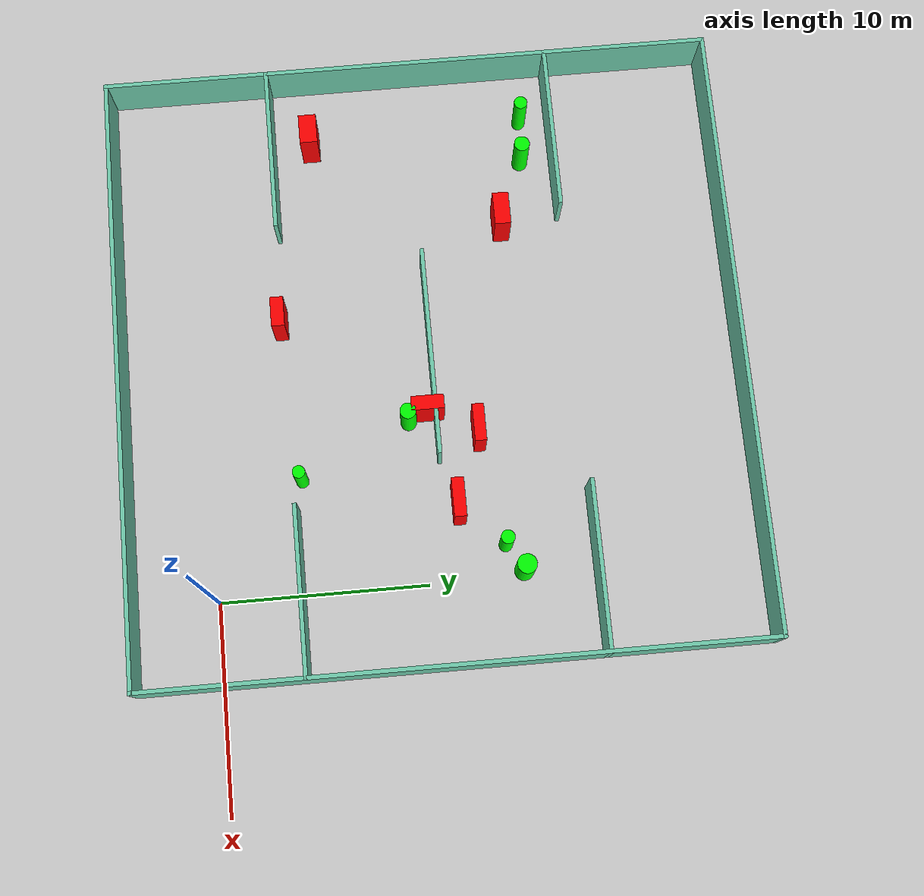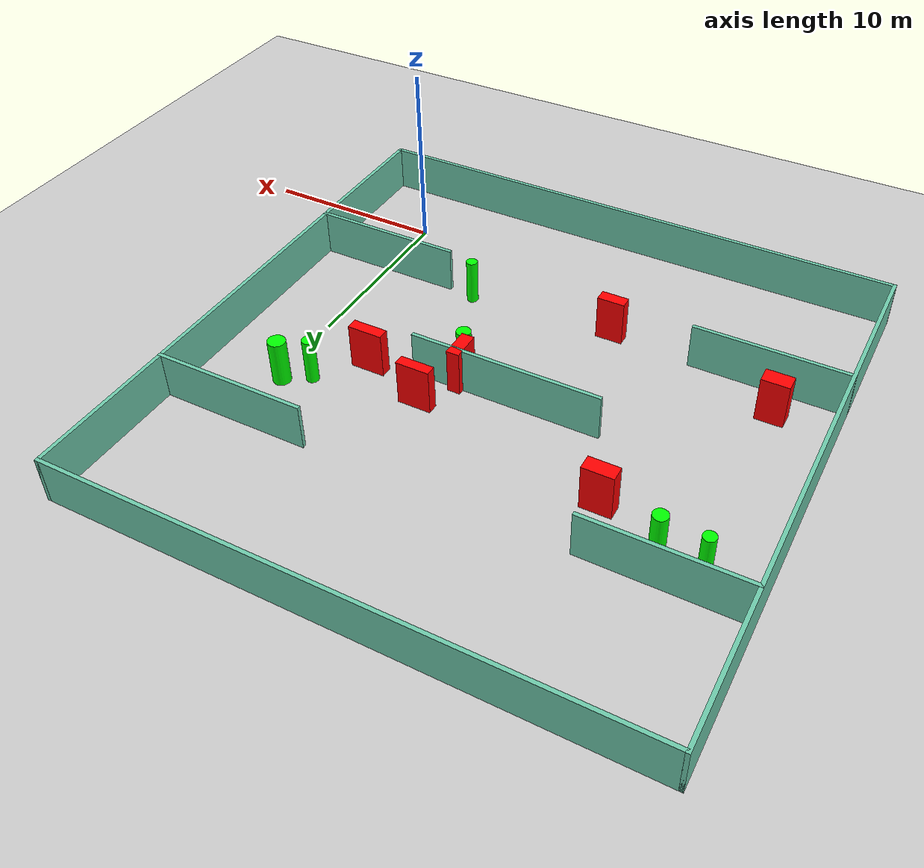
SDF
<sdf version="1.7">
 <world name="default">
  <light name="sun" type="directional">
   <pose>0 0 10 0 -0 0</pose>
   <diffuse>0.8 0.8 0.8 1</diffuse>
   <specular>0.2 0.2 0.2 1</specular>
   <attenuation>
    <range>1000</range>
    <constant>0.9</constant>
    <linear>0.01</linear>
    <quadratic>0.001</quadratic>
   </attenuation>
   <direction>-0.5 0.1 -0.9</direction>
   <spot><inner_angle>0</inner_angle><outer_angle>0</outer_angle><falloff>0</falloff></spot>
  </light>
  <model name="ground_plane">
   <static>1</static>
   <link name="link">
    <collision name="collision">
     <geometry><plane><normal>0 0 1</normal><size>100 100</size></plane></geometry>
     <surface>
      <contact><collide_bitmask>65535</collide_bitmask></contact>
      <friction><ode><mu>100</mu><mu2>50</mu2></ode></friction>
     </surface>
    </collision>
    <visual name="visual">
     <cast_shadows>0</cast_shadows>
     <geometry><plane><normal>0 0 1</normal><size>100 100</size></plane></geometry>
     <material>
      <script><uri>file://media/materials/scripts/gazebo.material</uri><name>Gazebo/Grey</name></script>
     </material>
    </visual>
   </link>
  </model>
  <gravity>0 0 -9.8</gravity>
  <magnetic_field>6e-06 2.3e-05 -4.2e-05</magnetic_field>
  <atmosphere type="adiabatic"/>
  <physics type="ode">
   <max_step_size>0.001</max_step_size>
   <real_time_factor>1</real_time_factor>
   <real_time_update_rate>1000</real_time_update_rate>
  </physics>
  <scene><ambient>0.4 0.4 0.4 1</ambient><background>0.7 0.7 0.7 1</background><shadows>1</shadows></scene>
  <spherical_coordinates>
   <surface_model>EARTH_WGS84</surface_model>
   <latitude_deg>0</latitude_deg>
   <longitude_deg>0</longitude_deg>
   <elevation>0</elevation>
   <heading_deg>0</heading_deg>
  </spherical_coordinates>
  <model name="my_base_walls">
   <link name="Wall_10">
    <collision name="Wall_10_Collision">
     <geometry><box><size>8.2 0.2 2.5</size></box></geometry>
     <pose>0 0 1.25 0 -0 0</pose>
    </collision>
    <visual name="Wall_10_Visual">
     <pose>0 0 1.25 0 -0 0</pose>
     <geometry><box><size>8.2 0.2 2.5</size></box></geometry>
     <material>
      <script><uri>file://media/materials/scripts/gazebo.material</uri><name>Gazebo/Grey</name></script>
      <ambient>0.435294 0.796078 0.67451 1</ambient>
     </material>
     <meta><layer>0</layer></meta>
    </visual>
    <pose>-11 -7 0 0 -0 0</pose>
   </link>
   <link name="Wall_12">
    <collision name="Wall_12_Collision">
     <geometry><box><size>8.2 0.2 2.5</size></box></geometry>
     <pose>0 0 1.25 0 -0 0</pose>
    </collision>
    <visual name="Wall_12_Visual">
     <pose>0 0 1.25 0 -0 0</pose>
     <geometry><box><size>8.2 0.2 2.5</size></box></geometry>
     <material>
      <script><uri>file://media/materials/scripts/gazebo.material</uri><name>Gazebo/Grey</name></script>
      <ambient>0.435294 0.796078 0.67451 1</ambient>
     </material>
     <meta><layer>0</layer></meta>
    </visual>
    <pose>-11 7 0 0 -0 0</pose>
   </link>
   <link name="Wall_14">
    <collision name="Wall_14_Collision">
     <geometry><box><size>8.2 0.2 2.5</size></box></geometry>
     <pose>0 0 1.25 0 -0 0</pose>
    </collision>
    <visual name="Wall_14_Visual">
     <pose>0 0 1.25 0 -0 0</pose>
     <geometry><box><size>8.2 0.2 2.5</size></box></geometry>
     <material>
      <script><uri>file://media/materials/scripts/gazebo.material</uri><name>Gazebo/Grey</name></script>
      <ambient>0.435294 0.796078 0.67451 1</ambient>
     </material>
     <meta><layer>0</layer></meta>
    </visual>
    <pose>11 7 0 0 -0 3.14159</pose>
   </link>
   <link name="Wall_16">
    <collision name="Wall_16_Collision">
     <geometry><box><size>10.2 0.2 2.5</size></box></geometry>
     <pose>0 0 1.25 0 -0 0</pose>
    </collision>
    <visual name="Wall_16_Visual">
     <pose>0 0 1.25 0 -0 0</pose>
     <geometry><box><size>10.2 0.2 2.5</size></box></geometry>
     <material>
      <script><uri>file://media/materials/scripts/gazebo.material</uri><name>Gazebo/Grey</name></script>
      <ambient>0.435294 0.796078 0.67451 1</ambient>
     </material>
     <meta><layer>0</layer></meta>
    </visual>
    <pose>0 0 0 0 -0 3.14159</pose>
   </link>
   <link name="Wall_2">
    <collision name="Wall_2_Collision">
     <geometry><box><size>30.2 0.2 2.5</size></box></geometry>
     <pose>0 0 1.25 0 -0 0</pose>
    </collision>
    <visual name="Wall_2_Visual">
     <pose>0 0 1.25 0 -0 0</pose>
     <geometry><box><size>30.2 0.2 2.5</size></box></geometry>
     <material>
      <script><uri>file://media/materials/scripts/gazebo.material</uri><name>Gazebo/Grey</name></script>
      <ambient>0.435294 0.796078 0.67451 1</ambient>
     </material>
     <meta><layer>0</layer></meta>
    </visual>
    <pose>0 -15 0 0 -0 3.14159</pose>
   </link>
   <link name="Wall_3">
    <collision name="Wall_3_Collision">
     <geometry><box><size>30.2 0.2 2.5</size></box></geometry>
     <pose>0 0 1.25 0 -0 0</pose>
    </collision>
    <visual name="Wall_3_Visual">
     <pose>0 0 1.25 0 -0 0</pose>
     <geometry><box><size>30.2 0.2 2.5</size></box></geometry>
     <material>
      <script><uri>file://media/materials/scripts/gazebo.material</uri><name>Gazebo/Grey</name></script>
      <ambient>0.435294 0.796078 0.67451 1</ambient>
     </material>
     <meta><layer>0</layer></meta>
    </visual>
    <pose>-15 0 0 0 -0 1.5708</pose>
   </link>
   <link name="Wall_4">
    <collision name="Wall_4_Collision">
     <geometry><box><size>30.2 0.2 2.5</size></box></geometry>
     <pose>0 0 1.25 0 -0 0</pose>
    </collision>
    <visual name="Wall_4_Visual">
     <pose>0 0 1.25 0 -0 0</pose>
     <geometry><box><size>30.2 0.2 2.5</size></box></geometry>
     <material>
      <script><uri>file://media/materials/scripts/gazebo.material</uri><name>Gazebo/Grey</name></script>
      <ambient>0.435294 0.796078 0.67451 1</ambient>
     </material>
     <meta><layer>0</layer></meta>
    </visual>
    <pose>0 15 0 0 -0 0</pose>
   </link>
   <link name="Wall_6">
    <collision name="Wall_6_Collision">
     <geometry><box><size>30.2 0.2 2.5</size></box></geometry>
     <pose>0 0 1.25 0 -0 0</pose>
    </collision>
    <visual name="Wall_6_Visual">
     <pose>0 0 1.25 0 -0 0</pose>
     <geometry><box><size>30.2 0.2 2.5</size></box></geometry>
     <material>
      <script><uri>file://media/materials/scripts/gazebo.material</uri><name>Gazebo/Grey</name></script>
      <ambient>0.435294 0.796078 0.67451 1</ambient>
     </material>
     <meta><layer>0</layer></meta>
    </visual>
    <pose>15 0 0 0 -0 1.5708</pose>
   </link>
   <link name="Wall_8">
    <collision name="Wall_8_Collision">
     <geometry><box><size>8.2 0.2 2.5</size></box></geometry>
     <pose>0 0 1.25 0 -0 0</pose>
    </collision>
    <visual name="Wall_8_Visual">
     <pose>0 0 1.25 0 -0 0</pose>
     <geometry><box><size>8.2 0.2 2.5</size></box></geometry>
     <material>
      <script><uri>file://media/materials/scripts/gazebo.material</uri><name>Gazebo/Grey</name></script>
      <ambient>0.435294 0.796078 0.67451 1</ambient>
     </material>
     <meta><layer>0</layer></meta>
    </visual>
    <pose>11 -7 0 0 -0 3.14159</pose>
   </link>
   <static>1</static>
   <pose>-11 11 0 0 -0 0</pose>
  </model>
  <model name="cylinder1">
   <static>1</static>
   <link name="link">
    <inertial>
     <mass>1</mass>
     <inertia><ixx>0.5</ixx><ixy>0</ixy><ixz>0</ixz><iyy>0.5</iyy><iyz>0</iyz><izz>1</izz></inertia>
    </inertial>
    <collision name="collision">
     <geometry><cylinder><radius>0.3886559682137137</radius><length>2.5</length></cylinder></geometry>
    </collision>
    <visual name="visual">
     <geometry><cylinder><radius>0.3886559682137137</radius><length>2.5</length></cylinder></geometry>
     <material>
      <ambient>0 1 0 1</ambient>
      <diffuse>0 1 0 1</diffuse>
      <specular>0.1 0.1 0.1 1</specular>
      <emissive>0 0 0 0</emissive>
     </material>
    </visual>
   </link>
   <pose>-8.055528539401934 9.668114521813678 1.25 0 0 0</pose>
  </model>
  <model name="cylinder2">
   <static>1</static>
   <link name="link">
    <inertial>
     <mass>1</mass>
     <inertia><ixx>0.5</ixx><ixy>0</ixy><ixz>0</ixz><iyy>0.5</iyy><iyz>0</iyz><izz>1</izz></inertia>
    </inertial>
    <collision name="collision">
     <geometry><cylinder><radius>0.33173052727212593</radius><length>2.5</length></cylinder></geometry>
    </collision>
    <visual name="visual">
     <geometry><cylinder><radius>0.33173052727212593</radius><length>2.5</length></cylinder></geometry>
     <material>
      <ambient>0 1 0 1</ambient>
      <diffuse>0 1 0 1</diffuse>
      <specular>0.1 0.1 0.1 1</specular>
      <emissive>0 0 0 0</emissive>
     </material>
    </visual>
   </link>
   <pose>-1.6469114129933615 13.808355606830084 1.25 0 0 0</pose>
  </model>
  <model name="cylinder3">
   <static>1</static>
   <link name="link">
    <inertial>
     <mass>1</mass>
     <inertia><ixx>0.5</ixx><ixy>0</ixy><ixz>0</ixz><iyy>0.5</iyy><iyz>0</iyz><izz>1</izz></inertia>
    </inertial>
    <collision name="collision">
     <geometry><cylinder><radius>0.3053289854774438</radius><length>2.5</length></cylinder></geometry>
    </collision>
    <visual name="visual">
     <geometry><cylinder><radius>0.3053289854774438</radius><length>2.5</length></cylinder></geometry>
     <material>
      <ambient>0 1 0 1</ambient>
      <diffuse>0 1 0 1</diffuse>
      <specular>0.1 0.1 0.1 1</specular>
      <emissive>0 0 0 0</emissive>
     </material>
    </visual>
   </link>
   <pose>-5.562728521784308 4.305695929546982 1.25 0 0 0</pose>
  </model>
  <model name="cylinder4">
   <static>1</static>
   <link name="link">
    <inertial>
     <mass>1</mass>
     <inertia><ixx>0.5</ixx><ixy>0</ixy><ixz>0</ixz><iyy>0.5</iyy><iyz>0</iyz><izz>1</izz></inertia>
    </inertial>
    <collision name="collision">
     <geometry><cylinder><radius>0.37981195020242886</radius><length>2.5</length></cylinder></geometry>
    </collision>
    <visual name="visual">
     <geometry><cylinder><radius>0.37981195020242886</radius><length>2.5</length></cylinder></geometry>
     <material>
      <ambient>0 1 0 1</ambient>
      <diffuse>0 1 0 1</diffuse>
      <specular>0.1 0.1 0.1 1</specular>
      <emissive>0 0 0 0</emissive>
     </material>
    </visual>
   </link>
   <pose>-21.152506590957078 16.417917969488315 1.25 0 0 0</pose>
  </model>
  <model name="cylinder5">
   <static>1</static>
   <link name="link">
    <inertial>
     <mass>1</mass>
     <inertia><ixx>0.5</ixx><ixy>0</ixy><ixz>0</ixz><iyy>0.5</iyy><iyz>0</iyz><izz>1</izz></inertia>
    </inertial>
    <collision name="collision">
     <geometry><cylinder><radius>0.46996710874540293</radius><length>2.5</length></cylinder></geometry>
    </collision>
    <visual name="visual">
     <geometry><cylinder><radius>0.46996710874540293</radius><length>2.5</length></cylinder></geometry>
     <material>
      <ambient>0 1 0 1</ambient>
      <diffuse>0 1 0 1</diffuse>
      <specular>0.1 0.1 0.1 1</specular>
      <emissive>0 0 0 0</emissive>
     </material>
    </visual>
   </link>
   <pose>-0.32590523610170763 14.574457845686087 1.25 0 0 0</pose>
  </model>
  <model name="cylinder6">
   <static>1</static>
   <link name="link">
    <inertial>
     <mass>1</mass>
     <inertia><ixx>0.5</ixx><ixy>0</ixy><ixz>0</ixz><iyy>0.5</iyy><iyz>0</iyz><izz>1</izz></inertia>
    </inertial>
    <collision name="collision">
     <geometry><cylinder><radius>0.3246454802783331</radius><length>2.5</length></cylinder></geometry>
    </collision>
    <visual name="visual">
     <geometry><cylinder><radius>0.3246454802783331</radius><length>2.5</length></cylinder></geometry>
     <material>
      <ambient>0 1 0 1</ambient>
      <diffuse>0 1 0 1</diffuse>
      <specular>0.1 0.1 0.1 1</specular>
      <emissive>0 0 0 0</emissive>
     </material>
    </visual>
   </link>
   <pose>-23.352186916752167 16.57390380979966 1.25 0 0 0</pose>
  </model>
  <model name="box1">
   <static>1</static>
   <link name="link">
    <inertial>
     <mass>1</mass>
     <inertia><ixx>0.083</ixx><ixy>0</ixy><ixz>0</ixz><iyy>0.083</iyy><iyz>0</iyz><izz>0.083</izz></inertia>
    </inertial>
    <collision name="collision">
     <geometry><box><size>1.7979060419250805 0.5593227026108333 2.5</size></box></geometry>
    </collision>
    <visual name="visual">
     <geometry><box><size>1.7979060419250805 0.5593227026108333 2.5</size></box></geometry>
     <material>
      <ambient>1 0 0 1</ambient>
      <diffuse>1 0 0 1</diffuse>
      <specular>0.1 0.1 0.1 1</specular>
      <emissive>0 0 0 0</emissive>
     </material>
    </visual>
    <sensor name="my_contact" type="contact">
     <contact><collision>box_collision</collision><topic>__default_topic__</topic></contact>
    </sensor>
   </link>
   <pose>-7.239848077854248 12.989210511332292 1.25 0 0 0</pose>
  </model>
  <model name="box2">
   <static>1</static>
   <link name="link">
    <inertial>
     <mass>1</mass>
     <inertia><ixx>0.083</ixx><ixy>0</ixy><ixz>0</ixz><iyy>0.083</iyy><iyz>0</iyz><izz>0.083</izz></inertia>
    </inertial>
    <collision name="collision">
     <geometry><box><size>1.605890412808982 0.7881415516457562 2.5</size></box></geometry>
    </collision>
    <visual name="visual">
     <geometry><box><size>1.605890412808982 0.7881415516457562 2.5</size></box></geometry>
     <material>
      <ambient>1 0 0 1</ambient>
      <diffuse>1 0 0 1</diffuse>
      <specular>0.1 0.1 0.1 1</specular>
      <emissive>0 0 0 0</emissive>
     </material>
    </visual>
    <sensor name="my_contact" type="contact">
     <contact><collision>box_collision</collision><topic>__default_topic__</topic></contact>
    </sensor>
   </link>
   <pose>-17.87344086301541 15.083783325530007 1.25 0 0 0</pose>
  </model>
  <model name="box3">
   <static>1</static>
   <link name="link">
    <inertial>
     <mass>1</mass>
     <inertia><ixx>0.083</ixx><ixy>0</ixy><ixz>0</ixz><iyy>0.083</iyy><iyz>0</iyz><izz>0.083</izz></inertia>
    </inertial>
    <collision name="collision">
     <geometry><box><size>0.6840801878168346 1.5801360953080967 2.5</size></box></geometry>
    </collision>
    <visual name="visual">
     <geometry><box><size>0.6840801878168346 1.5801360953080967 2.5</size></box></geometry>
     <material>
      <ambient>1 0 0 1</ambient>
      <diffuse>1 0 0 1</diffuse>
      <specular>0.1 0.1 0.1 1</specular>
      <emissive>0 0 0 0</emissive>
     </material>
    </visual>
    <sensor name="my_contact" type="contact">
     <contact><collision>box_collision</collision><topic>__default_topic__</topic></contact>
    </sensor>
   </link>
   <pose>-8.407934574560688 10.62668879536434 1.25 0 0 0</pose>
  </model>
  <model name="box4">
   <static>1</static>
   <link name="link">
    <inertial>
     <mass>1</mass>
     <inertia><ixx>0.083</ixx><ixy>0</ixy><ixz>0</ixz><iyy>0.083</iyy><iyz>0</iyz><izz>0.083</izz></inertia>
    </inertial>
    <collision name="collision">
     <geometry><box><size>1.4533806089969272 0.8633913610009283 2.5</size></box></geometry>
    </collision>
    <visual name="visual">
     <geometry><box><size>1.4533806089969272 0.8633913610009283 2.5</size></box></geometry>
     <material>
      <ambient>1 0 0 1</ambient>
      <diffuse>1 0 0 1</diffuse>
      <specular>0.1 0.1 0.1 1</specular>
      <emissive>0 0 0 0</emissive>
     </material>
    </visual>
    <sensor name="my_contact" type="contact">
     <contact><collision>box_collision</collision><topic>__default_topic__</topic></contact>
    </sensor>
   </link>
   <pose>-22.87423700658922 5.898613768582845 1.25 0 0 0</pose>
  </model>
  <model name="box5">
   <static>1</static>
   <link name="link">
    <inertial>
     <mass>1</mass>
     <inertia><ixx>0.083</ixx><ixy>0</ixy><ixz>0</ixz><iyy>0.083</iyy><iyz>0</iyz><izz>0.083</izz></inertia>
    </inertial>
    <collision name="collision">
     <geometry><box><size>1.87137428748601 0.5984084860385497 2.5</size></box></geometry>
    </collision>
    <visual name="visual">
     <geometry><box><size>1.87137428748601 0.5984084860385497 2.5</size></box></geometry>
     <material>
      <ambient>1 0 0 1</ambient>
      <diffuse>1 0 0 1</diffuse>
      <specular>0.1 0.1 0.1 1</specular>
      <emissive>0 0 0 0</emissive>
     </material>
    </visual>
    <sensor name="my_contact" type="contact">
     <contact><collision>box_collision</collision><topic>__default_topic__</topic></contact>
    </sensor>
   </link>
   <pose>-3.7414636731466757 11.70702559477428 1.25 0 0 0</pose>
  </model>
  <model name="box6">
   <static>1</static>
   <link name="link">
    <inertial>
     <mass>1</mass>
     <inertia><ixx>0.083</ixx><ixy>0</ixy><ixz>0</ixz><iyy>0.083</iyy><iyz>0</iyz><izz>0.083</izz></inertia>
    </inertial>
    <collision name="collision">
     <geometry><box><size>1.4592673213840897 0.6384420899736406 2.5</size></box></geometry>
    </collision>
    <visual name="visual">
     <geometry><box><size>1.4592673213840897 0.6384420899736406 2.5</size></box></geometry>
     <material>
      <ambient>1 0 0 1</ambient>
      <diffuse>1 0 0 1</diffuse>
      <specular>0.1 0.1 0.1 1</specular>
      <emissive>0 0 0 0</emissive>
     </material>
    </visual>
    <sensor name="my_contact" type="contact">
     <contact><collision>box_collision</collision><topic>__default_topic__</topic></contact>
    </sensor>
   </link>
   <pose>-13.52741939870567 3.7912336326126495 1.25 0 0 0</pose>
  </model>
 </world>
</sdf>
